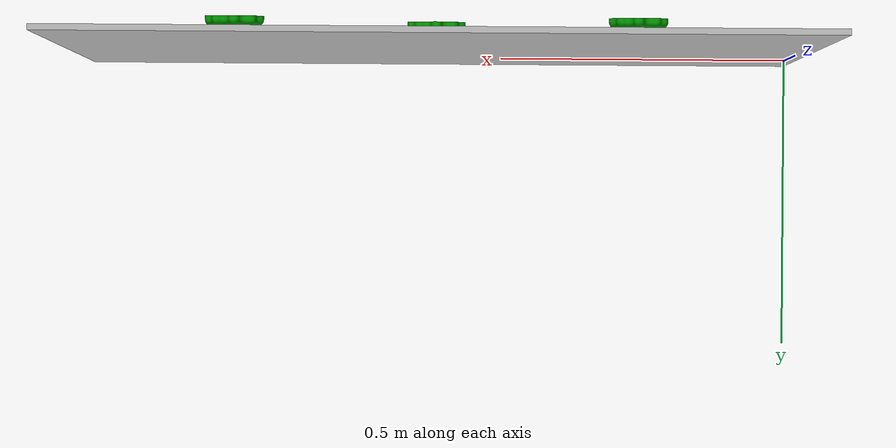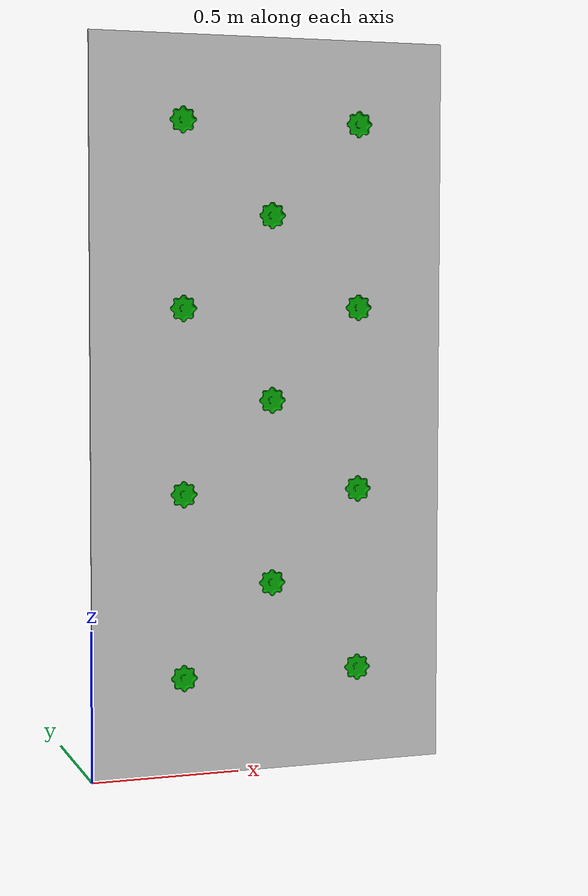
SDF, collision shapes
<?xml version="1.0" ?>
<sdf version="1.5">
  <model name="drc_practice_hand_wheel_valve_wall">
    <include>
      <uri>model://drc_practice_valve_wall</uri>
      <name>wall</name>
      <static>false</static>
    </include>
    <joint name="wall-joint" type="revolute">
      <parent>world</parent>
      <child>wall::link</child>
      <axis>
        <xyz>0 0 1</xyz>
        <limit>
          <lower>0</lower>
          <upper>0</upper>
        </limit>
        <use_parent_model_frame>true</use_parent_model_frame>
      </axis>
    </joint>
    <include>
      <uri>model://drc_practice_hand_wheel_valve</uri>
      <name>valve_0</name>
      <pose>0.919587 -0.02 0.285 0 0 0</pose>
    </include>
    <include>
      <uri>model://drc_practice_hand_wheel_valve</uri>
      <name>valve_1</name>
      <pose>0.919587 -0.02 0.8954 0 0 0</pose>
    </include>
    <include>
      <uri>model://drc_practice_hand_wheel_valve</uri>
      <name>valve_2</name>
      <pose>0.919587 -0.02 1.5058 0 0 0</pose>
    </include>
    <include>
      <uri>model://drc_practice_hand_wheel_valve</uri>
      <name>valve_3</name>
      <pose>0.919587 -0.02 2.1162 0 0 0</pose>
    </include>
    <include>
      <uri>model://drc_practice_hand_wheel_valve</uri>
      <name>valve_4</name>
      <pose>0.614335 -0.02 0.5896 0 0 0</pose>
    </include>
    <include>
      <uri>model://drc_practice_hand_wheel_valve</uri>
      <name>valve_5</name>
      <pose>0.614335 -0.02 1.2 0 0 0</pose>
    </include>
    <include>
      <uri>model://drc_practice_hand_wheel_valve</uri>
      <name>valve_6</name>
      <pose>0.614335 -0.02 1.8104 0 0 0</pose>
    </include>
    <include>
      <uri>model://drc_practice_hand_wheel_valve</uri>
      <name>valve_7</name>
      <pose>0.309083 -0.02 0.285 0 0 0</pose>
    </include>
    <include>
      <uri>model://drc_practice_hand_wheel_valve</uri>
      <name>valve_8</name>
      <pose>0.309083 -0.02 0.8954 0 0 0</pose>
    </include>
    <include>
      <uri>model://drc_practice_hand_wheel_valve</uri>
      <name>valve_9</name>
      <pose>0.309083 -0.02 1.5058 0 0 0</pose>
    </include>
    <include>
      <uri>model://drc_practice_hand_wheel_valve</uri>
      <name>valve_10</name>
      <pose>0.309083 -0.02 2.1162 0 0 0</pose>
    </include>
  </model>
</sdf>

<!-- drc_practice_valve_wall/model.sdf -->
<sdf version="1.5">
  <model name="drc_practice_valve_wall">
    <link name="link">

      <inertial>
        <pose>0.6096 0.00476 1.2192 0 0 0</pose>
        <mass>2.5</mass>
        <inertia>
          <ixx>1.23872608133</ixx>
          <ixy>0</ixy>
          <ixz>0</ixz>
          <iyy>1.548384</iyy>
          <iyz>0</iyz>
          <izz>0.30969568133</izz>
        </inertia>
      </inertial>

      <collision name="collision">
        <pose>0.6096 0.00476 1.2192 0 0 0</pose>
        <geometry>
          <box>
            <size>1.2192 0.00952 2.4384</size>
          </box>
        </geometry>
      </collision>
      <visual name="visual">
        <pose>-0.004536186 -0.003571748 0 0 0 0</pose>
        <geometry>
          <mesh>
            <uri>model://drc_practice_valve_wall/meshes/five_dice_wall.dae</uri>
          </mesh>
        </geometry>
      </visual>
    </link>
  </model>
</sdf>

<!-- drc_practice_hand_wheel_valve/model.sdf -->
<sdf version="1.5">
  <model name="drc_practice_hand_wheel_valve">
    <link name="handle">
      <pose>0 0 0.04445 0 0 0</pose>
      <inertial>
        <mass>0.0644</mass>
        <inertia>
          <ixx>0.000031</ixx>
          <ixy>0.0000</ixy>
          <ixz>0.0000</ixz>
          <iyy>0.000031</iyy>
          <iyz>0.0000</iyz>
          <izz>0.000059</izz>
        </inertia>
      </inertial>
      <collision name="collision">
        <geometry>
          <mesh>
            <uri>model://drc_practice_hand_wheel_valve/meshes/hand_wheel_valve.dae</uri>
          </mesh>
        </geometry>
        <surface>
          <bounce>
            <restitution_coefficient>0.01</restitution_coefficient>
            <threshold>5.0</threshold>
          </bounce>
          <friction>
            <ode>
              <mu>5</mu>
              <mu2>5</mu2>
            </ode>
          </friction>
          <contact>
            <ode>
              <soft_cfm>0.01</soft_cfm>
              <kp>1000000.0</kp>
              <kd>100000.0</kd>
              <max_vel>0.01</max_vel>
              <min_depth>0.001</min_depth>
            </ode>
          </contact>
        </surface>
      </collision>
      <visual name="visual">
        <geometry>
          <mesh>
            <uri>model://drc_practice_hand_wheel_valve/meshes/hand_wheel_valve.dae</uri>
          </mesh>
        </geometry>
      </visual>
    </link>
    <joint name="joint" type="revolute">
      <parent>world</parent>
      <child>handle</child>
      <axis>
        <xyz>0 1 0</xyz>
        <limit>
          <lower>-12.56</lower>
          <upper>12.56</upper>
        </limit>
        <dynamics>
          <!--velocity dependent viscous damping coefficient of the joint-->
          <damping>10</damping>
          <!--default 0, static friction value of the joint-->
          <friction>10</friction>
        </dynamics>
        <use_parent_model_frame>true</use_parent_model_frame>
      </axis>
      <physics>
        <ode>
          <cfm_damping>1</cfm_damping>
        </ode>
      </physics>
    </joint>
  </model>
</sdf>
